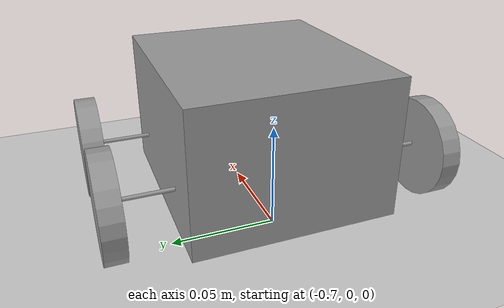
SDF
<sdf version="1.6">
 <world name="default">
  <model name="ground_plane">
   <static>1</static>
   <link name="link">
    <collision name="collision">
     <geometry><plane><normal>0 0 1</normal><size>100 100</size></plane></geometry>
     <surface>
      <contact><collide_bitmask>65535</collide_bitmask></contact>
      <friction><ode><mu>100</mu><mu2>50</mu2></ode></friction>
     </surface>
    </collision>
    <visual name="visual">
     <cast_shadows>0</cast_shadows>
     <geometry><plane><normal>0 0 1</normal><size>100 100</size></plane></geometry>
     <material>
      <script><uri>file://media/materials/scripts/gazebo.material</uri><name>Gazebo/Grey</name></script>
     </material>
    </visual>
   </link>
  </model>
  <model name="Scout_0">
   <link name="link_5">
    <pose>0.000124 0.000467 0.012036 0 1.5707 0</pose>
    <inertial>
     <mass>1</mass>
     <inertia>
      <ixx>0.166667</ixx>
      <ixy>0</ixy>
      <ixz>0</ixz>
      <iyy>0.166667</iyy>
      <iyz>0</iyz>
      <izz>0.166667</izz>
     </inertia>
    </inertial>
    <visual name="visual">
     <geometry><box><size>0.07 0.1 0.11</size></box></geometry>
     <material>
      <lighting>1</lighting>
      <script><uri>file://media/materials/scripts/gazebo.material</uri><name>Gazebo/Grey</name></script>
      <shader type="pixel"><normal_map>__default__</normal_map></shader>
      <ambient>0.3 0.3 0.3 1</ambient>
      <diffuse>0.7 0.7 0.7 1</diffuse>
      <specular>0.01 0.01 0.01 1</specular>
      <emissive>0 0 0 1</emissive>
     </material>
    </visual>
    <collision name="collision">
     <geometry><box><size>0.07 0.1 0.11</size></box></geometry>
     <surface>
      <friction>
       <ode><mu>1</mu><mu2>1</mu2><fdir1>0 0 0</fdir1><slip1>0</slip1><slip2>0</slip2></ode>
       <torsional>
        <coefficient>1</coefficient>
        <patch_radius>0</patch_radius>
        <surface_radius>0</surface_radius>
        <use_patch_radius>1</use_patch_radius>
        <ode><slip>0</slip></ode>
       </torsional>
      </friction>
      <bounce><restitution_coefficient>0</restitution_coefficient><threshold>1e+06</threshold></bounce>
      <contact>
       <collide_without_contact>0</collide_without_contact>
       <collide_without_contact_bitmask>1</collide_without_contact_bitmask>
       <collide_bitmask>1</collide_bitmask>
       <ode>
        <soft_cfm>0</soft_cfm>
        <soft_erp>0.2</soft_erp>
        <kp>1e+13</kp>
        <kd>1</kd>
        <max_vel>0.01</max_vel>
        <min_depth>0</min_depth>
       </ode>
       <bullet>
        <split_impulse>1</split_impulse>
        <split_impulse_penetration_threshold>-0.01</split_impulse_penetration_threshold>
        <soft_cfm>0</soft_cfm>
        <soft_erp>0.2</soft_erp>
        <kp>1e+13</kp>
        <kd>1</kd>
       </bullet>
      </contact>
     </surface>
    </collision>
   </link>
   <link name="link_6">
    <pose>0.030124 -0.082817 -0.002561 1.5707 -0 0</pose>
    <inertial>
     <mass>1</mass>
     <inertia><ixx>0.145833</ixx><ixy>0</ixy><ixz>0</ixz><iyy>0.145833</iyy><iyz>0</iyz><izz>0.125</izz></inertia>
    </inertial>
    <visual name="visual">
     <geometry><cylinder><radius>0.0254</radius><length>0.01</length></cylinder></geometry>
     <material>
      <lighting>1</lighting>
      <script><uri>file://media/materials/scripts/gazebo.material</uri><name>Gazebo/Grey</name></script>
      <shader type="pixel"><normal_map>__default__</normal_map></shader>
      <ambient>0.3 0.3 0.3 1</ambient>
      <diffuse>0.7 0.7 0.7 1</diffuse>
      <specular>0.01 0.01 0.01 1</specular>
      <emissive>0 0 0 1</emissive>
     </material>
    </visual>
    <collision name="collision">
     <geometry><cylinder><radius>0.0254</radius><length>0.01</length></cylinder></geometry>
     <surface>
      <friction>
       <ode><mu>1</mu><mu2>1</mu2><fdir1>0 0 0</fdir1><slip1>0</slip1><slip2>0</slip2></ode>
       <torsional>
        <coefficient>1</coefficient>
        <patch_radius>0</patch_radius>
        <surface_radius>0</surface_radius>
        <use_patch_radius>1</use_patch_radius>
        <ode><slip>0</slip></ode>
       </torsional>
      </friction>
      <bounce><restitution_coefficient>0</restitution_coefficient><threshold>1e+06</threshold></bounce>
      <contact>
       <collide_without_contact>0</collide_without_contact>
       <collide_without_contact_bitmask>1</collide_without_contact_bitmask>
       <collide_bitmask>1</collide_bitmask>
       <ode>
        <soft_cfm>0</soft_cfm>
        <soft_erp>0.2</soft_erp>
        <kp>1e+13</kp>
        <kd>1</kd>
        <max_vel>0.01</max_vel>
        <min_depth>0</min_depth>
       </ode>
       <bullet>
        <split_impulse>1</split_impulse>
        <split_impulse_penetration_threshold>-0.01</split_impulse_penetration_threshold>
        <soft_cfm>0</soft_cfm>
        <soft_erp>0.2</soft_erp>
        <kp>1e+13</kp>
        <kd>1</kd>
       </bullet>
      </contact>
     </surface>
    </collision>
   </link>
   <link name="link_6_clone">
    <pose>-0.029876 -0.079536 -0.002561 1.5707 -0 0</pose>
    <inertial>
     <mass>1</mass>
     <inertia><ixx>0.145833</ixx><ixy>0</ixy><ixz>0</ixz><iyy>0.145833</iyy><iyz>0</iyz><izz>0.125</izz></inertia>
    </inertial>
    <visual name="visual">
     <geometry><cylinder><radius>0.0254</radius><length>0.01</length></cylinder></geometry>
     <material>
      <lighting>1</lighting>
      <script><uri>file://media/materials/scripts/gazebo.material</uri><name>Gazebo/Grey</name></script>
      <shader type="pixel"><normal_map>__default__</normal_map></shader>
      <ambient>0.3 0.3 0.3 1</ambient>
      <diffuse>0.7 0.7 0.7 1</diffuse>
      <specular>0.01 0.01 0.01 1</specular>
      <emissive>0 0 0 1</emissive>
     </material>
    </visual>
    <collision name="collision">
     <geometry><cylinder><radius>0.0254</radius><length>0.01</length></cylinder></geometry>
     <surface>
      <friction>
       <ode><mu>1</mu><mu2>1</mu2><fdir1>0 0 0</fdir1><slip1>0</slip1><slip2>0</slip2></ode>
       <torsional>
        <coefficient>1</coefficient>
        <patch_radius>0</patch_radius>
        <surface_radius>0</surface_radius>
        <use_patch_radius>1</use_patch_radius>
        <ode><slip>0</slip></ode>
       </torsional>
      </friction>
      <bounce><restitution_coefficient>0</restitution_coefficient><threshold>1e+06</threshold></bounce>
      <contact>
       <collide_without_contact>0</collide_without_contact>
       <collide_without_contact_bitmask>1</collide_without_contact_bitmask>
       <collide_bitmask>1</collide_bitmask>
       <ode>
        <soft_cfm>0</soft_cfm>
        <soft_erp>0.2</soft_erp>
        <kp>1e+13</kp>
        <kd>1</kd>
        <max_vel>0.01</max_vel>
        <min_depth>0</min_depth>
       </ode>
       <bullet>
        <split_impulse>1</split_impulse>
        <split_impulse_penetration_threshold>-0.01</split_impulse_penetration_threshold>
        <soft_cfm>0</soft_cfm>
        <soft_erp>0.2</soft_erp>
        <kp>1e+13</kp>
        <kd>1</kd>
       </bullet>
      </contact>
     </surface>
    </collision>
   </link>
   <link name="link_6_clone_0">
    <pose>0.02967 0.080483 -0.002563 1.5707 -0 0</pose>
    <inertial>
     <mass>1</mass>
     <inertia><ixx>0.145833</ixx><ixy>0</ixy><ixz>0</ixz><iyy>0.145833</iyy><iyz>0</iyz><izz>0.125</izz></inertia>
    </inertial>
    <visual name="visual">
     <geometry><cylinder><radius>0.0254</radius><length>0.01</length></cylinder></geometry>
     <material>
      <lighting>1</lighting>
      <script><uri>file://media/materials/scripts/gazebo.material</uri><name>Gazebo/Grey</name></script>
      <shader type="pixel"><normal_map>__default__</normal_map></shader>
      <ambient>0.3 0.3 0.3 1</ambient>
      <diffuse>0.7 0.7 0.7 1</diffuse>
      <specular>0.01 0.01 0.01 1</specular>
      <emissive>0 0 0 1</emissive>
     </material>
    </visual>
    <collision name="collision">
     <geometry><cylinder><radius>0.0254</radius><length>0.01</length></cylinder></geometry>
     <surface>
      <friction>
       <ode><mu>1</mu><mu2>1</mu2><fdir1>0 0 0</fdir1><slip1>0</slip1><slip2>0</slip2></ode>
       <torsional>
        <coefficient>1</coefficient>
        <patch_radius>0</patch_radius>
        <surface_radius>0</surface_radius>
        <use_patch_radius>1</use_patch_radius>
        <ode><slip>0</slip></ode>
       </torsional>
      </friction>
      <bounce><restitution_coefficient>0</restitution_coefficient><threshold>1e+06</threshold></bounce>
      <contact>
       <collide_without_contact>0</collide_without_contact>
       <collide_without_contact_bitmask>1</collide_without_contact_bitmask>
       <collide_bitmask>1</collide_bitmask>
       <ode>
        <soft_cfm>0</soft_cfm>
        <soft_erp>0.2</soft_erp>
        <kp>1e+13</kp>
        <kd>1</kd>
        <max_vel>0.01</max_vel>
        <min_depth>0</min_depth>
       </ode>
       <bullet>
        <split_impulse>1</split_impulse>
        <split_impulse_penetration_threshold>-0.01</split_impulse_penetration_threshold>
        <soft_cfm>0</soft_cfm>
        <soft_erp>0.2</soft_erp>
        <kp>1e+13</kp>
        <kd>1</kd>
       </bullet>
      </contact>
     </surface>
    </collision>
   </link>
   <link name="link_6_clone_1">
    <pose>-0.029876 0.080469 -0.002563 1.5707 -0 0</pose>
    <inertial>
     <mass>1</mass>
     <inertia><ixx>0.145833</ixx><ixy>0</ixy><ixz>0</ixz><iyy>0.145833</iyy><iyz>0</iyz><izz>0.125</izz></inertia>
    </inertial>
    <visual name="visual">
     <geometry><cylinder><radius>0.0254</radius><length>0.01</length></cylinder></geometry>
     <material>
      <lighting>1</lighting>
      <script><uri>file://media/materials/scripts/gazebo.material</uri><name>Gazebo/Grey</name></script>
      <shader type="pixel"><normal_map>__default__</normal_map></shader>
      <ambient>0.3 0.3 0.3 1</ambient>
      <diffuse>0.7 0.7 0.7 1</diffuse>
      <specular>0.01 0.01 0.01 1</specular>
      <emissive>0 0 0 1</emissive>
     </material>
    </visual>
    <collision name="collision">
     <geometry><cylinder><radius>0.0254</radius><length>0.01</length></cylinder></geometry>
     <surface>
      <friction>
       <ode><mu>1</mu><mu2>1</mu2><fdir1>0 0 0</fdir1><slip1>0</slip1><slip2>0</slip2></ode>
       <torsional>
        <coefficient>1</coefficient>
        <patch_radius>0</patch_radius>
        <surface_radius>0</surface_radius>
        <use_patch_radius>1</use_patch_radius>
        <ode><slip>0</slip></ode>
       </torsional>
      </friction>
      <bounce><restitution_coefficient>0</restitution_coefficient><threshold>1e+06</threshold></bounce>
      <contact>
       <collide_without_contact>0</collide_without_contact>
       <collide_without_contact_bitmask>1</collide_without_contact_bitmask>
       <collide_bitmask>1</collide_bitmask>
       <ode>
        <soft_cfm>0</soft_cfm>
        <soft_erp>0.2</soft_erp>
        <kp>1e+13</kp>
        <kd>1</kd>
        <max_vel>0.01</max_vel>
        <min_depth>0</min_depth>
       </ode>
       <bullet>
        <split_impulse>1</split_impulse>
        <split_impulse_penetration_threshold>-0.01</split_impulse_penetration_threshold>
        <soft_cfm>0</soft_cfm>
        <soft_erp>0.2</soft_erp>
        <kp>1e+13</kp>
        <kd>1</kd>
       </bullet>
      </contact>
     </surface>
    </collision>
   </link>
   <link name="link_7">
    <pose>0.029712 0.000467 -0.000894 1.5707 -0 0</pose>
    <inertial>
     <mass>1</mass>
     <inertia><ixx>0.145833</ixx><ixy>0</ixy><ixz>0</ixz><iyy>0.145833</iyy><iyz>0</iyz><izz>0.125</izz></inertia>
    </inertial>
    <visual name="visual">
     <geometry><cylinder><radius>0.001</radius><length>0.15</length></cylinder></geometry>
     <material>
      <lighting>1</lighting>
      <script><uri>file://media/materials/scripts/gazebo.material</uri><name>Gazebo/Grey</name></script>
      <shader type="pixel"><normal_map>__default__</normal_map></shader>
      <ambient>0.3 0.3 0.3 1</ambient>
      <diffuse>0.7 0.7 0.7 1</diffuse>
      <specular>0.01 0.01 0.01 1</specular>
      <emissive>0 0 0 1</emissive>
     </material>
    </visual>
    <collision name="collision">
     <geometry><cylinder><radius>0.001</radius><length>0.15</length></cylinder></geometry>
     <surface>
      <friction>
       <ode><mu>1</mu><mu2>1</mu2><fdir1>0 0 0</fdir1><slip1>0</slip1><slip2>0</slip2></ode>
       <torsional>
        <coefficient>1</coefficient>
        <patch_radius>0</patch_radius>
        <surface_radius>0</surface_radius>
        <use_patch_radius>1</use_patch_radius>
        <ode><slip>0</slip></ode>
       </torsional>
      </friction>
      <bounce><restitution_coefficient>0</restitution_coefficient><threshold>1e+06</threshold></bounce>
      <contact>
       <collide_without_contact>0</collide_without_contact>
       <collide_without_contact_bitmask>1</collide_without_contact_bitmask>
       <collide_bitmask>1</collide_bitmask>
       <ode>
        <soft_cfm>0</soft_cfm>
        <soft_erp>0.2</soft_erp>
        <kp>1e+13</kp>
        <kd>1</kd>
        <max_vel>0.01</max_vel>
        <min_depth>0</min_depth>
       </ode>
       <bullet>
        <split_impulse>1</split_impulse>
        <split_impulse_penetration_threshold>-0.01</split_impulse_penetration_threshold>
        <soft_cfm>0</soft_cfm>
        <soft_erp>0.2</soft_erp>
        <kp>1e+13</kp>
        <kd>1</kd>
       </bullet>
      </contact>
     </surface>
    </collision>
   </link>
   <link name="link_7_clone">
    <pose>-0.029876 0.000467 -0.000894 1.5707 -0 0</pose>
    <inertial>
     <mass>1</mass>
     <inertia><ixx>0.145833</ixx><ixy>0</ixy><ixz>0</ixz><iyy>0.145833</iyy><iyz>0</iyz><izz>0.125</izz></inertia>
    </inertial>
    <visual name="visual">
     <geometry><cylinder><radius>0.001</radius><length>0.15</length></cylinder></geometry>
     <material>
      <lighting>1</lighting>
      <script><uri>file://media/materials/scripts/gazebo.material</uri><name>Gazebo/Grey</name></script>
      <shader type="pixel"><normal_map>__default__</normal_map></shader>
      <ambient>0.3 0.3 0.3 1</ambient>
      <diffuse>0.7 0.7 0.7 1</diffuse>
      <specular>0.01 0.01 0.01 1</specular>
      <emissive>0 0 0 1</emissive>
     </material>
    </visual>
    <collision name="collision">
     <geometry><cylinder><radius>0.001</radius><length>0.15</length></cylinder></geometry>
     <surface>
      <friction>
       <ode><mu>1</mu><mu2>1</mu2><fdir1>0 0 0</fdir1><slip1>0</slip1><slip2>0</slip2></ode>
       <torsional>
        <coefficient>1</coefficient>
        <patch_radius>0</patch_radius>
        <surface_radius>0</surface_radius>
        <use_patch_radius>1</use_patch_radius>
        <ode><slip>0</slip></ode>
       </torsional>
      </friction>
      <bounce><restitution_coefficient>0</restitution_coefficient><threshold>1e+06</threshold></bounce>
      <contact>
       <collide_without_contact>0</collide_without_contact>
       <collide_without_contact_bitmask>1</collide_without_contact_bitmask>
       <collide_bitmask>1</collide_bitmask>
       <ode>
        <soft_cfm>0</soft_cfm>
        <soft_erp>0.2</soft_erp>
        <kp>1e+13</kp>
        <kd>1</kd>
        <max_vel>0.01</max_vel>
        <min_depth>0</min_depth>
       </ode>
       <bullet>
        <split_impulse>1</split_impulse>
        <split_impulse_penetration_threshold>-0.01</split_impulse_penetration_threshold>
        <soft_cfm>0</soft_cfm>
        <soft_erp>0.2</soft_erp>
        <kp>1e+13</kp>
        <kd>1</kd>
       </bullet>
      </contact>
     </surface>
    </collision>
   </link>
   <joint name="link_5_JOINT_13" type="fixed">
    <parent>link_5</parent>
    <child>link_7</child>
    <physics>
     <ode><limit><cfm>0</cfm><erp>0.2</erp></limit><suspension><cfm>0</cfm><erp>0.2</erp></suspension></ode>
    </physics>
   </joint>
   <joint name="link_5_JOINT_14" type="fixed">
    <parent>link_5</parent>
    <child>link_7_clone</child>
    <physics>
     <ode><limit><cfm>0</cfm><erp>0.2</erp></limit><suspension><cfm>0</cfm><erp>0.2</erp></suspension></ode>
    </physics>
   </joint>
   <joint name="link_7_JOINT_12" type="revolute">
    <parent>link_7</parent>
    <child>link_6</child>
    <axis>
     <xyz>1 0 0</xyz>
     <use_parent_model_frame>0</use_parent_model_frame>
     <limit>
      <lower>-1.79769e+308</lower>
      <upper>1.79769e+308</upper>
      <effort>-1</effort>
      <velocity>-1</velocity>
     </limit>
     <dynamics>
      <spring_reference>0</spring_reference>
      <spring_stiffness>0</spring_stiffness>
      <damping>0</damping>
     </dynamics>
    </axis>
    <physics>
     <ode><limit><cfm>0</cfm><erp>0.2</erp></limit><suspension><cfm>0</cfm><erp>0.2</erp></suspension></ode>
    </physics>
   </joint>
   <joint name="link_7_JOINT_8" type="revolute">
    <parent>link_7</parent>
    <child>link_6_clone_0</child>
    <axis>
     <xyz>1 0 0</xyz>
     <use_parent_model_frame>0</use_parent_model_frame>
     <limit>
      <lower>-1.79769e+308</lower>
      <upper>1.79769e+308</upper>
      <effort>-1</effort>
      <velocity>-1</velocity>
     </limit>
     <dynamics>
      <spring_reference>0</spring_reference>
      <spring_stiffness>0</spring_stiffness>
      <damping>0</damping>
      <friction>0</friction>
     </dynamics>
    </axis>
    <physics>
     <ode><limit><cfm>0</cfm><erp>0.2</erp></limit><suspension><cfm>0</cfm><erp>0.2</erp></suspension></ode>
    </physics>
   </joint>
   <joint name="link_7_clone_JOINT_10" type="revolute">
    <parent>link_7_clone</parent>
    <child>link_6_clone_1</child>
    <axis>
     <xyz>1 0 0</xyz>
     <use_parent_model_frame>0</use_parent_model_frame>
     <limit>
      <lower>-1.79769e+308</lower>
      <upper>1.79769e+308</upper>
      <effort>-1</effort>
      <velocity>-1</velocity>
     </limit>
     <dynamics>
      <spring_reference>0</spring_reference>
      <spring_stiffness>0</spring_stiffness>
      <damping>0</damping>
      <friction>0</friction>
     </dynamics>
    </axis>
    <physics>
     <ode><limit><cfm>0</cfm><erp>0.2</erp></limit><suspension><cfm>0</cfm><erp>0.2</erp></suspension></ode>
    </physics>
   </joint>
   <joint name="link_7_clone_JOINT_11" type="revolute">
    <parent>link_7_clone</parent>
    <child>link_6_clone</child>
    <axis>
     <xyz>1 0 0</xyz>
     <use_parent_model_frame>0</use_parent_model_frame>
     <limit>
      <lower>-1.79769e+308</lower>
      <upper>1.79769e+308</upper>
      <effort>-1</effort>
      <velocity>-1</velocity>
     </limit>
     <dynamics>
      <spring_reference>0</spring_reference>
      <spring_stiffness>0</spring_stiffness>
      <damping>0</damping>
     </dynamics>
    </axis>
    <physics>
     <ode><limit><cfm>0</cfm><erp>0.2</erp></limit><suspension><cfm>0</cfm><erp>0.2</erp></suspension></ode>
    </physics>
   </joint>
   <static>0</static>
   <pose>-0.667605 -0.004314 0.027954 1.4e-05 2.7e-05 2e-06</pose>
  </model>
  <model name="unit_box_1_clone">
   <pose>-1.72374 -4.71484 0.058964 0 -0 3.7e-05</pose>
   <link name="link">
    <inertial>
     <mass>1</mass>
     <inertia>
      <ixx>0.166667</ixx>
      <ixy>0</ixy>
      <ixz>0</ixz>
      <iyy>0.166667</iyy>
      <iyz>0</iyz>
      <izz>0.166667</izz>
     </inertia>
    </inertial>
    <collision name="collision"><geometry><box><size>1 0.550173 0.117928</size></box></geometry></collision>
    <visual name="visual">
     <geometry><box><size>1 0.550173 0.117928</size></box></geometry>
     <material>
      <script><name>Gazebo/Grey</name><uri>file://media/materials/scripts/gazebo.material</uri></script>
     </material>
    </visual>
   </link>
  </model>
 </world>
</sdf>
